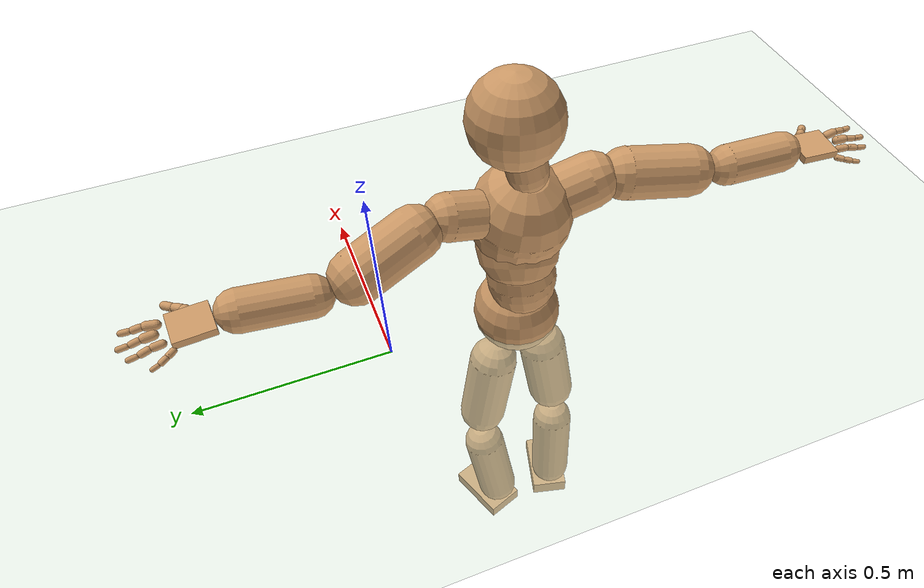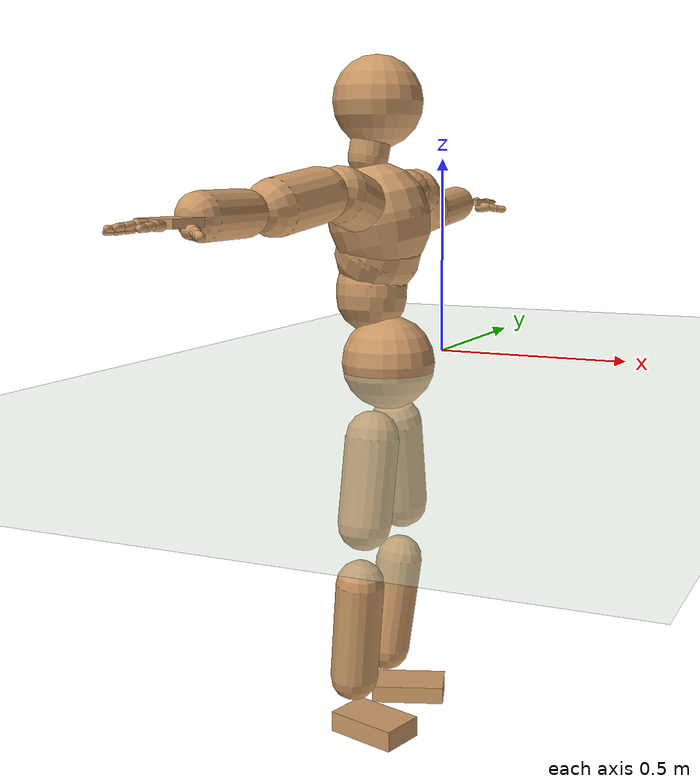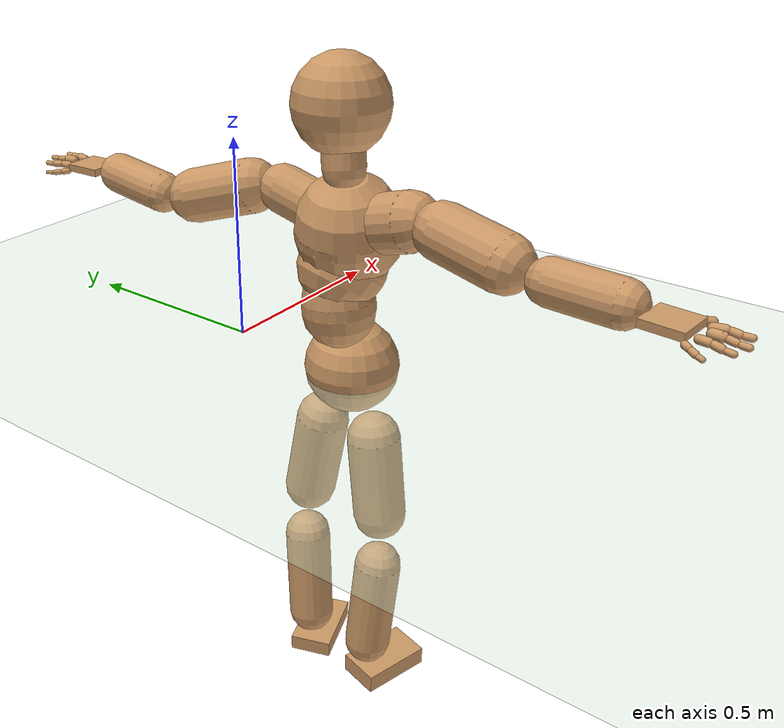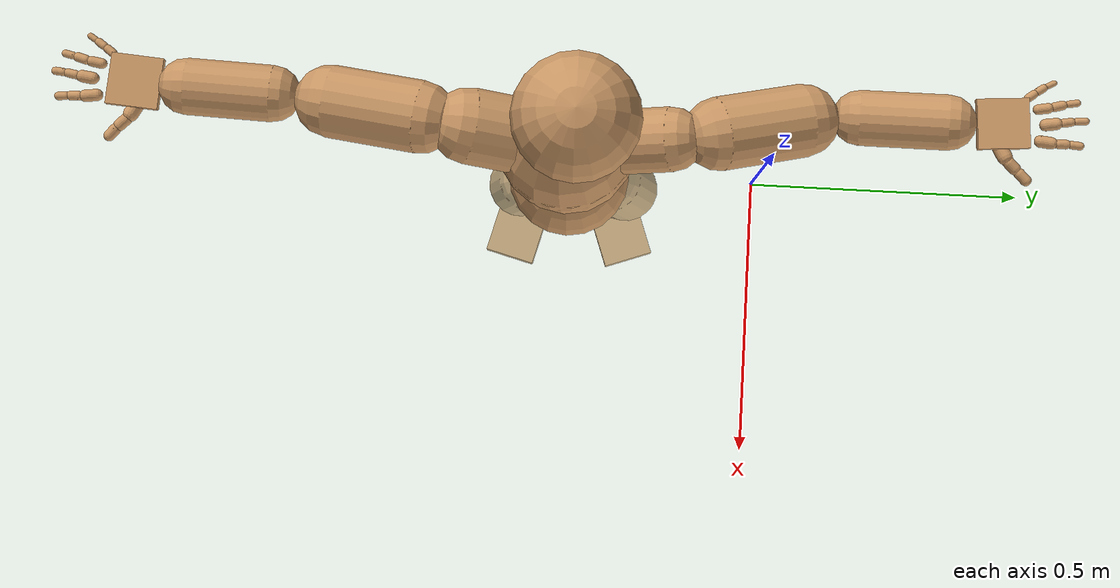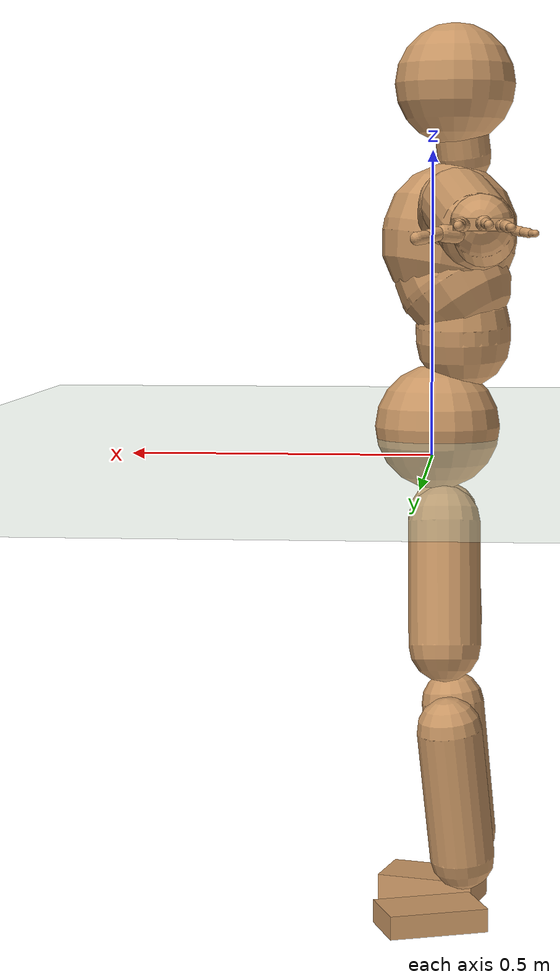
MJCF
<mujoco model="humanoid">
  <compiler coordinate="local" angle="radian"/>
  <default>
    <joint damping="0.0" armature="0.01" stiffness="0.0" limited="true"/>
    <geom conaffinity="1" condim="3" contype="7" margin="0.001" rgba="0.8 0.6 .4 1"/>
  </default>
  <asset>
    <texture type="skybox" builtin="gradient" rgb1=".4 .5 .6" rgb2="0 0 0" width="100" height="100"/>
    <texture builtin="flat" height="1278" mark="cross" markrgb="1 1 1" name="texgeom" random="0.01" rgb1="0.8 0.6 0.4" rgb2="0.8 0.6 0.4" type="cube" width="127"/>
    <texture builtin="checker" height="100" name="texplane" rgb1="0 0 0" rgb2="0.8 0.8 0.8" type="2d" width="100"/>
    <material name="MatPlane" reflectance="0.5" shininess="1" specular="1" texrepeat="60 60" texture="texplane"/>
    <material name="geom" texture="texgeom" texuniform="true"/>
  </asset>
  <worldbody>
    <light cutoff="100" diffuse="1 1 1" dir="-0 0 -1.3" directional="true" exponent="1" pos="0 0 1.3" specular=".1 .1 .1"/>
    <geom conaffinity="1" condim="3" name="floor" pos="0 0 0" rgba="0.8 0.9 0.8 1" size="100 100 .2" type="plane" material="MatPlane"/>
    <body name="Pelvis" pos="0.0018 -0.3444 0.0189">
      <freejoint name="Pelvis"/>
      <geom type="sphere" contype="1" conaffinity="1" density="500" size="0.1129" pos="0.0000 0.0000 0.0000" name="Pelvis"/>
      <body name="L_Hip" pos="-0.0149 0.0616 -0.0914">
        <joint name="L_Hip_x" type="hinge" pos="0 0 0" axis="1 0 0" stiffness="800" damping="80" armature="0.02" range="-180.0000 180.0000"/>
        <joint name="L_Hip_y" type="hinge" pos="0 0 0" axis="0 1 0" stiffness="800" damping="80" armature="0.02" range="-180.0000 180.0000"/>
        <joint name="L_Hip_z" type="hinge" pos="0 0 0" axis="0 0 1" stiffness="800" damping="80" armature="0.02" range="-180.0000 180.0000"/>
        <geom type="capsule" contype="1" conaffinity="1" density="500" fromto="-0.0010 0.0133 -0.0723 -0.0040 0.0530 -0.2892" size="0.0647" name="L_Hip"/>
        <body name="L_Knee" pos="-0.005 0.0663 -0.3615">
          <joint name="L_Knee_x" type="hinge" pos="0 0 0" axis="1 0 0" stiffness="800" damping="80" armature="0.02" range="-180.0000 180.0000"/>
          <joint name="L_Knee_y" type="hinge" pos="0 0 0" axis="0 1 0" stiffness="800" damping="80" armature="0.02" range="-180.0000 180.0000"/>
          <joint name="L_Knee_z" type="hinge" pos="0 0 0" axis="0 0 1" stiffness="800" damping="80" armature="0.02" range="-180.0000 180.0000"/>
          <geom type="capsule" contype="1" conaffinity="1" density="500" fromto="-0.0081 -0.0095 -0.0795 -0.0322 -0.0381 -0.3182" size="0.0586" name="L_Knee"/>
          <body name="L_Ankle" pos="-0.0403 -0.0477 -0.3977">
            <joint name="L_Ankle_x" type="hinge" pos="0 0 0" axis="1 0 0" stiffness="800" damping="80" armature="0.02" range="-180.0000 180.0000"/>
            <joint name="L_Ankle_y" type="hinge" pos="0 0 0" axis="0 1 0" stiffness="800" damping="80" armature="0.02" range="-180.0000 180.0000"/>
            <joint name="L_Ankle_z" type="hinge" pos="0 0 0" axis="0 0 1" stiffness="800" damping="80" armature="0.02" range="-180.0000 180.0000"/>
            <geom type="box" contype="1" conaffinity="1" density="500" pos="0.0651 0.0231 -0.0281" size="0.0915 0.0543 0.0213" quat="0.9855 0.0000 0.0000 0.1696" name="L_Ankle"/>
            <body name="L_Toe" pos="0.1302 0.0462 -0.0563">
              <joint name="L_Toe_x" type="hinge" pos="0 0 0" axis="1 0 0" stiffness="500" damping="50" armature="0.02" range="-180.0000 180.0000"/>
              <joint name="L_Toe_y" type="hinge" pos="0 0 0" axis="0 1 0" stiffness="500" damping="50" armature="0.02" range="-180.0000 180.0000"/>
              <joint name="L_Toe_z" type="hinge" pos="0 0 0" axis="0 0 1" stiffness="500" damping="50" armature="0.02" range="-180.0000 180.0000"/>
              <geom type="box" contype="1" conaffinity="1" density="500" pos="0.0000 0.0000 0.0294" size="0.0011 0.0026 0.0011" quat="0.9848 0.0000 0.0000 0.1738" name="L_Toe"/>
            </body>
          </body>
        </body>
      </body>
      <body name="R_Hip" pos="-0.0065 -0.0639 -0.1026">
        <joint name="R_Hip_x" type="hinge" pos="0 0 0" axis="1 0 0" stiffness="800" damping="80" armature="0.02" range="-180.0000 180.0000"/>
        <joint name="R_Hip_y" type="hinge" pos="0 0 0" axis="0 1 0" stiffness="800" damping="80" armature="0.02" range="-180.0000 180.0000"/>
        <joint name="R_Hip_z" type="hinge" pos="0 0 0" axis="0 0 1" stiffness="800" damping="80" armature="0.02" range="-180.0000 180.0000"/>
        <geom type="capsule" contype="1" conaffinity="1" density="500" fromto="-0.0028 -0.0098 -0.0690 -0.0112 -0.0392 -0.2762" size="0.0647" name="R_Hip"/>
        <body name="R_Knee" pos="-0.014 -0.049 -0.3452">
          <joint name="R_Knee_x" type="hinge" pos="0 0 0" axis="1 0 0" stiffness="800" damping="80" armature="0.02" range="-180.0000 180.0000"/>
          <joint name="R_Knee_y" type="hinge" pos="0 0 0" axis="0 1 0" stiffness="800" damping="80" armature="0.02" range="-180.0000 180.0000"/>
          <joint name="R_Knee_z" type="hinge" pos="0 0 0" axis="0 0 1" stiffness="800" damping="80" armature="0.02" range="-180.0000 180.0000"/>
          <geom type="capsule" contype="1" conaffinity="1" density="500" fromto="-0.0080 0.0034 -0.0820 -0.0319 0.0135 -0.3278" size="0.0587" name="R_Knee"/>
          <body name="R_Ankle" pos="-0.0398 0.0169 -0.4098">
            <joint name="R_Ankle_x" type="hinge" pos="0 0 0" axis="1 0 0" stiffness="800" damping="80" armature="0.02" range="-180.0000 180.0000"/>
            <joint name="R_Ankle_y" type="hinge" pos="0 0 0" axis="0 1 0" stiffness="800" damping="80" armature="0.02" range="-180.0000 180.0000"/>
            <joint name="R_Ankle_z" type="hinge" pos="0 0 0" axis="0 0 1" stiffness="800" damping="80" armature="0.02" range="-180.0000 180.0000"/>
            <geom type="box" contype="1" conaffinity="1" density="500" pos="0.0686 -0.0183 -0.0275" size="0.0915 0.0543 0.0252" quat="0.9915 0.0000 0.0000 -0.1302" name="R_Ankle"/>
            <body name="R_Toe" pos="0.1373 -0.0367 -0.055">
              <joint name="R_Toe_x" type="hinge" pos="0 0 0" axis="1 0 0" stiffness="500" damping="50" armature="0.02" range="-180.0000 180.0000"/>
              <joint name="R_Toe_y" type="hinge" pos="0 0 0" axis="0 1 0" stiffness="500" damping="50" armature="0.02" range="-180.0000 180.0000"/>
              <joint name="R_Toe_z" type="hinge" pos="0 0 0" axis="0 0 1" stiffness="500" damping="50" armature="0.02" range="-180.0000 180.0000"/>
              <geom type="box" contype="1" conaffinity="1" density="500" pos="0.0000 0.0000 0.0248" size="0.001 0.0026 0.0011" quat="0.9926 0.0000 0.0000 -0.1217" name="R_Toe"/>
            </body>
          </body>
        </body>
      </body>
      <body name="Torso" pos="-0.0471 -0.0007 0.1019">
        <joint name="Torso_x" type="hinge" pos="0 0 0" axis="1 0 0" stiffness="1000" damping="100" armature="0.02" range="-180.0000 180.0000"/>
        <joint name="Torso_y" type="hinge" pos="0 0 0" axis="0 1 0" stiffness="1000" damping="100" armature="0.02" range="-180.0000 180.0000"/>
        <joint name="Torso_z" type="hinge" pos="0 0 0" axis="0 0 1" stiffness="1000" damping="100" armature="0.02" range="-180.0000 180.0000"/>
        <geom type="capsule" contype="1" conaffinity="1" density="500" fromto="0.0016 0.0081 0.0805 0.0011 0.0054 0.0537" size="0.0853" name="Torso"/>
        <body name="Spine" pos="0.0027 0.0135 0.1342">
          <joint name="Spine_x" type="hinge" pos="0 0 0" axis="1 0 0" stiffness="1000" damping="100" armature="0.02" range="-180.0000 180.0000"/>
          <joint name="Spine_y" type="hinge" pos="0 0 0" axis="0 1 0" stiffness="1000" damping="100" armature="0.02" range="-180.0000 180.0000"/>
          <joint name="Spine_z" type="hinge" pos="0 0 0" axis="0 0 1" stiffness="1000" damping="100" armature="0.02" range="-180.0000 180.0000"/>
          <geom type="capsule" contype="1" conaffinity="1" density="500" fromto="0.0205 -0.0066 0.0324 0.0137 -0.0044 0.0216" size="0.102" name="Spine"/>
          <body name="Chest" pos="0.0341 -0.0109 0.054">
            <joint name="Chest_x" type="hinge" pos="0 0 0" axis="1 0 0" stiffness="1000" damping="100" armature="0.02" range="-180.0000 180.0000"/>
            <joint name="Chest_y" type="hinge" pos="0 0 0" axis="0 1 0" stiffness="1000" damping="100" armature="0.02" range="-180.0000 180.0000"/>
            <joint name="Chest_z" type="hinge" pos="0 0 0" axis="0 0 1" stiffness="1000" damping="100" armature="0.02" range="-180.0000 180.0000"/>
            <geom type="capsule" contype="1" conaffinity="1" density="500" fromto="-0.0116 -0.0046 0.0620 -0.0078 -0.0031 0.0413" size="0.121" name="Chest"/>
            <body name="Neck" pos="-0.0395 -0.0137 0.1617">
              <joint name="Neck_x" type="hinge" pos="0 0 0" axis="1 0 0" stiffness="500" damping="50" armature="0.02" range="-180.0000 180.0000"/>
              <joint name="Neck_y" type="hinge" pos="0 0 0" axis="0 1 0" stiffness="500" damping="50" armature="0.02" range="-180.0000 180.0000"/>
              <joint name="Neck_z" type="hinge" pos="0 0 0" axis="0 0 1" stiffness="500" damping="50" armature="0.02" range="-180.0000 180.0000"/>
              <geom type="capsule" contype="1" conaffinity="1" density="500" fromto="0.0041 0.0052 0.0319 0.0165 0.0210 0.1275" size="0.0479" name="Neck"/>
              <body name="Head" pos="0.0207 0.0262 0.1594">
                <joint name="Head_x" type="hinge" pos="0 0 0" axis="1 0 0" stiffness="500" damping="50" armature="0.02" range="-180.0000 180.0000"/>
                <joint name="Head_y" type="hinge" pos="0 0 0" axis="0 1 0" stiffness="500" damping="50" armature="0.02" range="-180.0000 180.0000"/>
                <joint name="Head_z" type="hinge" pos="0 0 0" axis="0 0 1" stiffness="500" damping="50" armature="0.02" range="-180.0000 180.0000"/>
                <geom type="sphere" contype="1" conaffinity="1" density="500" size="0.1073" pos="0.0000 0.0000 0.0000" name="Head"/>
              </body>
            </body>
            <body name="L_Thorax" pos="-0.0085 0.0468 0.0737">
              <joint name="L_Thorax_x" type="hinge" pos="0 0 0" axis="1 0 0" stiffness="500" damping="50" armature="0.02" range="-180.0000 180.0000"/>
              <joint name="L_Thorax_y" type="hinge" pos="0 0 0" axis="0 1 0" stiffness="500" damping="50" armature="0.02" range="-180.0000 180.0000"/>
              <joint name="L_Thorax_z" type="hinge" pos="0 0 0" axis="0 0 1" stiffness="500" damping="50" armature="0.02" range="-180.0000 180.0000"/>
              <geom type="capsule" contype="1" conaffinity="1" density="500" fromto="-0.0021 0.0317 0.0090 -0.0084 0.1269 0.0362" size="0.056" name="L_Thorax"/>
              <body name="L_Shoulder" pos="-0.0106 0.1586 0.0452">
                <joint name="L_Shoulder_x" type="hinge" pos="0 0 0" axis="1 0 0" stiffness="500" damping="50" armature="0.02" range="-180.0000 180.0000"/>
                <joint name="L_Shoulder_y" type="hinge" pos="0 0 0" axis="0 1 0" stiffness="500" damping="50" armature="0.02" range="-180.0000 180.0000"/>
                <joint name="L_Shoulder_z" type="hinge" pos="0 0 0" axis="0 0 1" stiffness="500" damping="50" armature="0.02" range="-180.0000 180.0000"/>
                <geom type="capsule" contype="1" conaffinity="1" density="500" fromto="-0.0119 0.0485 -0.0145 -0.0476 0.1941 -0.0580" size="0.0633" name="L_Shoulder"/>
                <body name="L_Elbow" pos="-0.0595 0.2426 -0.0725">
                  <joint name="L_Elbow_x" type="hinge" pos="0 0 0" axis="1 0 0" stiffness="500" damping="50" armature="0.02" range="-720.0000 720.0000"/>
                  <joint name="L_Elbow_y" type="hinge" pos="0 0 0" axis="0 1 0" stiffness="500" damping="50" armature="0.02" range="-720.0000 720.0000"/>
                  <joint name="L_Elbow_z" type="hinge" pos="0 0 0" axis="0 0 1" stiffness="500" damping="50" armature="0.02" range="-720.0000 720.0000"/>
                  <geom type="capsule" contype="1" conaffinity="1" density="500" fromto="0.0010 0.0503 0.0056 0.0040 0.2011 0.0224" size="0.0482" name="L_Elbow"/>
                  <body name="L_Wrist" pos="0.0049 0.2513 0.028">
                    <joint name="L_Wrist_x" type="hinge" pos="0 0 0" axis="1 0 0" stiffness="300" damping="30" armature="0.02" range="-180.0000 180.0000"/>
                    <joint name="L_Wrist_y" type="hinge" pos="0 0 0" axis="0 1 0" stiffness="300" damping="30" armature="0.02" range="-180.0000 180.0000"/>
                    <joint name="L_Wrist_z" type="hinge" pos="0 0 0" axis="0 0 1" stiffness="300" damping="30" armature="0.02" range="-180.0000 180.0000"/>
                    <geom type="box" contype="1" conaffinity="1" density="500" pos="-0.0029 0.0428 -0.0050" size="0.045 0.0432 0.0088" quat="0.7307 0.0000 0.0000 -0.6827" name="L_Wrist"/>
                    <body name="L_Index1" pos="0.0231 0.1013 -0.0063">
                      <joint name="L_Index1_x" type="hinge" pos="0 0 0" axis="1 0 0" stiffness="100" damping="10" armature="0.02" range="-180.0000 180.0000"/>
                      <joint name="L_Index1_y" type="hinge" pos="0 0 0" axis="0 1 0" stiffness="100" damping="10" armature="0.02" range="-180.0000 180.0000"/>
                      <joint name="L_Index1_z" type="hinge" pos="0 0 0" axis="0 0 1" stiffness="100" damping="10" armature="0.02" range="-180.0000 180.0000"/>
                      <geom type="capsule" contype="1" conaffinity="1" density="500" fromto="0.0008 0.0065 0.0004 0.0032 0.0261 0.0017" size="0.0104" name="L_Index1"/>
                      <body name="L_Index2" pos="0.004 0.0327 0.0021">
                        <joint name="L_Index2_x" type="hinge" pos="0 0 0" axis="1 0 0" stiffness="100" damping="10" armature="0.02" range="-180.0000 180.0000"/>
                        <joint name="L_Index2_y" type="hinge" pos="0 0 0" axis="0 1 0" stiffness="100" damping="10" armature="0.02" range="-180.0000 180.0000"/>
                        <joint name="L_Index2_z" type="hinge" pos="0 0 0" axis="0 0 1" stiffness="100" damping="10" armature="0.02" range="-180.0000 180.0000"/>
                        <geom type="capsule" contype="1" conaffinity="1" density="500" fromto="-0.0000 0.0046 -0.0005 -0.0001 0.0184 -0.0021" size="0.0083" name="L_Index2"/>
                        <body name="L_Index3" pos="-0.0001 0.023 -0.0026">
                          <joint name="L_Index3_x" type="hinge" pos="0 0 0" axis="1 0 0" stiffness="100" damping="10" armature="0.02" range="-180.0000 180.0000"/>
                          <joint name="L_Index3_y" type="hinge" pos="0 0 0" axis="0 1 0" stiffness="100" damping="10" armature="0.02" range="-180.0000 180.0000"/>
                          <joint name="L_Index3_z" type="hinge" pos="0 0 0" axis="0 0 1" stiffness="100" damping="10" armature="0.02" range="-180.0000 180.0000"/>
                          <geom type="capsule" contype="1" conaffinity="1" density="500" fromto="0.0004 0.0050 -0.0001 0.0015 0.0200 -0.0005" size="0.007" name="L_Index3"/>
                        </body>
                      </body>
                    </body>
                    <body name="L_Middle1" pos="-0.0035 0.1092 -0.0033">
                      <joint name="L_Middle1_x" type="hinge" pos="0 0 0" axis="1 0 0" stiffness="100" damping="10" armature="0.02" range="-180.0000 180.0000"/>
                      <joint name="L_Middle1_y" type="hinge" pos="0 0 0" axis="0 1 0" stiffness="100" damping="10" armature="0.02" range="-180.0000 180.0000"/>
                      <joint name="L_Middle1_z" type="hinge" pos="0 0 0" axis="0 0 1" stiffness="100" damping="10" armature="0.02" range="-180.0000 180.0000"/>
                      <geom type="capsule" contype="1" conaffinity="1" density="500" fromto="-0.0009 0.0063 0.0001 -0.0036 0.0250 0.0006" size="0.0105" name="L_Middle1"/>
                      <body name="L_Middle2" pos="-0.0046 0.0313 0.0007">
                        <joint name="L_Middle2_x" type="hinge" pos="0 0 0" axis="1 0 0" stiffness="100" damping="10" armature="0.02" range="-180.0000 180.0000"/>
                        <joint name="L_Middle2_y" type="hinge" pos="0 0 0" axis="0 1 0" stiffness="100" damping="10" armature="0.02" range="-180.0000 180.0000"/>
                        <joint name="L_Middle2_z" type="hinge" pos="0 0 0" axis="0 0 1" stiffness="100" damping="10" armature="0.02" range="-180.0000 180.0000"/>
                        <geom type="capsule" contype="1" conaffinity="1" density="500" fromto="-0.0009 0.0047 -0.0005 -0.0035 0.0190 -0.0021" size="0.0076" name="L_Middle2"/>
                        <body name="L_Middle3" pos="-0.0044 0.0237 -0.0026">
                          <joint name="L_Middle3_x" type="hinge" pos="0 0 0" axis="1 0 0" stiffness="100" damping="10" armature="0.02" range="-180.0000 180.0000"/>
                          <joint name="L_Middle3_y" type="hinge" pos="0 0 0" axis="0 1 0" stiffness="100" damping="10" armature="0.02" range="-180.0000 180.0000"/>
                          <joint name="L_Middle3_z" type="hinge" pos="0 0 0" axis="0 0 1" stiffness="100" damping="10" armature="0.02" range="-180.0000 180.0000"/>
                          <geom type="capsule" contype="1" conaffinity="1" density="500" fromto="-0.0005 0.0051 -0.0001 -0.0019 0.0206 -0.0005" size="0.0066" name="L_Middle3"/>
                        </body>
                      </body>
                    </body>
                    <body name="L_Pinky1" pos="-0.0485 0.083 -0.0134">
                      <joint name="L_Pinky1_x" type="hinge" pos="0 0 0" axis="1 0 0" stiffness="100" damping="10" armature="0.02" range="-180.0000 180.0000"/>
                      <joint name="L_Pinky1_y" type="hinge" pos="0 0 0" axis="0 1 0" stiffness="100" damping="10" armature="0.02" range="-180.0000 180.0000"/>
                      <joint name="L_Pinky1_z" type="hinge" pos="0 0 0" axis="0 0 1" stiffness="100" damping="10" armature="0.02" range="-180.0000 180.0000"/>
                      <geom type="capsule" contype="1" conaffinity="1" density="500" fromto="-0.0025 0.0034 -0.0004 -0.0100 0.0135 -0.0015" size="0.0074" name="L_Pinky1"/>
                      <body name="L_Pinky2" pos="-0.0125 0.0168 -0.0019">
                        <joint name="L_Pinky2_x" type="hinge" pos="0 0 0" axis="1 0 0" stiffness="100" damping="10" armature="0.02" range="-180.0000 180.0000"/>
                        <joint name="L_Pinky2_y" type="hinge" pos="0 0 0" axis="0 1 0" stiffness="100" damping="10" armature="0.02" range="-180.0000 180.0000"/>
                        <joint name="L_Pinky2_z" type="hinge" pos="0 0 0" axis="0 0 1" stiffness="100" damping="10" armature="0.02" range="-180.0000 180.0000"/>
                        <geom type="capsule" contype="1" conaffinity="1" density="500" fromto="-0.0022 0.0033 -0.0005 -0.0090 0.0132 -0.0018" size="0.007" name="L_Pinky2"/>
                        <body name="L_Pinky3" pos="-0.0112 0.0165 -0.0023">
                          <joint name="L_Pinky3_x" type="hinge" pos="0 0 0" axis="1 0 0" stiffness="100" damping="10" armature="0.02" range="-180.0000 180.0000"/>
                          <joint name="L_Pinky3_y" type="hinge" pos="0 0 0" axis="0 1 0" stiffness="100" damping="10" armature="0.02" range="-180.0000 180.0000"/>
                          <joint name="L_Pinky3_z" type="hinge" pos="0 0 0" axis="0 0 1" stiffness="100" damping="10" armature="0.02" range="-180.0000 180.0000"/>
                          <geom type="capsule" contype="1" conaffinity="1" density="500" fromto="-0.0018 0.0037 -0.0001 -0.0074 0.0148 -0.0002" size="0.0052" name="L_Pinky3"/>
                        </body>
                      </body>
                    </body>
                    <body name="L_Ring1" pos="-0.0301 0.0969 -0.007">
                      <joint name="L_Ring1_x" type="hinge" pos="0 0 0" axis="1 0 0" stiffness="100" damping="10" armature="0.02" range="-180.0000 180.0000"/>
                      <joint name="L_Ring1_y" type="hinge" pos="0 0 0" axis="0 1 0" stiffness="100" damping="10" armature="0.02" range="-180.0000 180.0000"/>
                      <joint name="L_Ring1_z" type="hinge" pos="0 0 0" axis="0 0 1" stiffness="100" damping="10" armature="0.02" range="-180.0000 180.0000"/>
                      <geom type="capsule" contype="1" conaffinity="1" density="500" fromto="-0.0010 0.0058 0.0001 -0.0040 0.0234 0.0005" size="0.0089" name="L_Ring1"/>
                      <body name="L_Ring2" pos="-0.0051 0.0292 0.0006">
                        <joint name="L_Ring2_x" type="hinge" pos="0 0 0" axis="1 0 0" stiffness="100" damping="10" armature="0.02" range="-180.0000 180.0000"/>
                        <joint name="L_Ring2_y" type="hinge" pos="0 0 0" axis="0 1 0" stiffness="100" damping="10" armature="0.02" range="-180.0000 180.0000"/>
                        <joint name="L_Ring2_z" type="hinge" pos="0 0 0" axis="0 0 1" stiffness="100" damping="10" armature="0.02" range="-180.0000 180.0000"/>
                        <geom type="capsule" contype="1" conaffinity="1" density="500" fromto="-0.0014 0.0047 -0.0005 -0.0054 0.0189 -0.0021" size="0.0081" name="L_Ring2"/>
                        <body name="L_Ring3" pos="-0.0068 0.0236 -0.0026">
                          <joint name="L_Ring3_x" type="hinge" pos="0 0 0" axis="1 0 0" stiffness="100" damping="10" armature="0.02" range="-180.0000 180.0000"/>
                          <joint name="L_Ring3_y" type="hinge" pos="0 0 0" axis="0 1 0" stiffness="100" damping="10" armature="0.02" range="-180.0000 180.0000"/>
                          <joint name="L_Ring3_z" type="hinge" pos="0 0 0" axis="0 0 1" stiffness="100" damping="10" armature="0.02" range="-180.0000 180.0000"/>
                          <geom type="capsule" contype="1" conaffinity="1" density="500" fromto="-0.0010 0.0051 -0.0001 -0.0038 0.0205 -0.0005" size="0.0062" name="L_Ring3"/>
                        </body>
                      </body>
                    </body>
                    <body name="L_Thumb1" pos="0.0298 0.0379 -0.0197">
                      <joint name="L_Thumb1_x" type="hinge" pos="0 0 0" axis="1 0 0" stiffness="100" damping="10" armature="0.02" range="-180.0000 180.0000"/>
                      <joint name="L_Thumb1_y" type="hinge" pos="0 0 0" axis="0 1 0" stiffness="100" damping="10" armature="0.02" range="-180.0000 180.0000"/>
                      <joint name="L_Thumb1_z" type="hinge" pos="0 0 0" axis="0 0 1" stiffness="100" damping="10" armature="0.02" range="-180.0000 180.0000"/>
                      <geom type="capsule" contype="1" conaffinity="1" density="500" fromto="0.0056 0.0031 0.0005 0.0224 0.0126 0.0021" size="0.0134" name="L_Thumb1"/>
                      <body name="L_Thumb2" pos="0.028 0.0157 0.0026">
                        <joint name="L_Thumb2_x" type="hinge" pos="0 0 0" axis="1 0 0" stiffness="100" damping="10" armature="0.02" range="-180.0000 180.0000"/>
                        <joint name="L_Thumb2_y" type="hinge" pos="0 0 0" axis="0 1 0" stiffness="100" damping="10" armature="0.02" range="-180.0000 180.0000"/>
                        <joint name="L_Thumb2_z" type="hinge" pos="0 0 0" axis="0 0 1" stiffness="100" damping="10" armature="0.02" range="-180.0000 180.0000"/>
                        <geom type="capsule" contype="1" conaffinity="1" density="500" fromto="0.0034 0.0038 -0.0010 0.0138 0.0154 -0.0042" size="0.0106" name="L_Thumb2"/>
                        <body name="L_Thumb3" pos="0.0172 0.0192 -0.0052">
                          <joint name="L_Thumb3_x" type="hinge" pos="0 0 0" axis="1 0 0" stiffness="100" damping="10" armature="0.02" range="-180.0000 180.0000"/>
                          <joint name="L_Thumb3_y" type="hinge" pos="0 0 0" axis="0 1 0" stiffness="100" damping="10" armature="0.02" range="-180.0000 180.0000"/>
                          <joint name="L_Thumb3_z" type="hinge" pos="0 0 0" axis="0 0 1" stiffness="100" damping="10" armature="0.02" range="-180.0000 180.0000"/>
                          <geom type="capsule" contype="1" conaffinity="1" density="500" fromto="0.0038 0.0042 -0.0006 0.0154 0.0170 -0.0026" size="0.0097" name="L_Thumb3"/>
                        </body>
                      </body>
                    </body>
                  </body>
                </body>
              </body>
            </body>
            <body name="R_Thorax" pos="-0.0102 -0.0561 0.0746">
              <joint name="R_Thorax_x" type="hinge" pos="0 0 0" axis="1 0 0" stiffness="500" damping="50" armature="0.02" range="-180.0000 180.0000"/>
              <joint name="R_Thorax_y" type="hinge" pos="0 0 0" axis="0 1 0" stiffness="500" damping="50" armature="0.02" range="-180.0000 180.0000"/>
              <joint name="R_Thorax_z" type="hinge" pos="0 0 0" axis="0 0 1" stiffness="500" damping="50" armature="0.02" range="-180.0000 180.0000"/>
              <geom type="capsule" contype="1" conaffinity="1" density="500" fromto="-0.0032 -0.0289 0.0089 -0.0128 -0.1158 0.0356" size="0.0657" name="R_Thorax"/>
              <body name="R_Shoulder" pos="-0.016 -0.1447 0.0445">
                <joint name="R_Shoulder_x" type="hinge" pos="0 0 0" axis="1 0 0" stiffness="500" damping="50" armature="0.02" range="-180.0000 180.0000"/>
                <joint name="R_Shoulder_y" type="hinge" pos="0 0 0" axis="0 1 0" stiffness="500" damping="50" armature="0.02" range="-180.0000 180.0000"/>
                <joint name="R_Shoulder_z" type="hinge" pos="0 0 0" axis="0 0 1" stiffness="500" damping="50" armature="0.02" range="-180.0000 180.0000"/>
                <geom type="capsule" contype="1" conaffinity="1" density="500" fromto="-0.0075 -0.0523 -0.0077 -0.0299 -0.2092 -0.0307" size="0.0625" name="R_Shoulder"/>
                <body name="R_Elbow" pos="-0.0374 -0.2615 -0.0383">
                  <joint name="R_Elbow_x" type="hinge" pos="0 0 0" axis="1 0 0" stiffness="500" damping="50" armature="0.02" range="-720.0000 720.0000"/>
                  <joint name="R_Elbow_y" type="hinge" pos="0 0 0" axis="0 1 0" stiffness="500" damping="50" armature="0.02" range="-720.0000 720.0000"/>
                  <joint name="R_Elbow_z" type="hinge" pos="0 0 0" axis="0 0 1" stiffness="500" damping="50" armature="0.02" range="-720.0000 720.0000"/>
                  <geom type="capsule" contype="1" conaffinity="1" density="500" fromto="-0.0018 -0.0490 -0.0005 -0.0073 -0.1960 -0.0018" size="0.0492" name="R_Elbow"/>
                  <body name="R_Wrist" pos="-0.0091 -0.245 -0.0023">
                    <joint name="R_Wrist_x" type="hinge" pos="0 0 0" axis="1 0 0" stiffness="300" damping="30" armature="0.02" range="-180.0000 180.0000"/>
                    <joint name="R_Wrist_y" type="hinge" pos="0 0 0" axis="0 1 0" stiffness="300" damping="30" armature="0.02" range="-180.0000 180.0000"/>
                    <joint name="R_Wrist_z" type="hinge" pos="0 0 0" axis="0 0 1" stiffness="300" damping="30" armature="0.02" range="-180.0000 180.0000"/>
                    <geom type="box" contype="1" conaffinity="1" density="500" pos="-0.0034 -0.0425 -0.0070" size="0.045 0.0442 0.009" quat="0.7347 0.0000 0.0000 0.6784" name="R_Wrist"/>
                    <body name="R_Index1" pos="0.0221 -0.1007 -0.0103">
                      <joint name="R_Index1_x" type="hinge" pos="0 0 0" axis="1 0 0" stiffness="100" damping="10" armature="0.02" range="-180.0000 180.0000"/>
                      <joint name="R_Index1_y" type="hinge" pos="0 0 0" axis="0 1 0" stiffness="100" damping="10" armature="0.02" range="-180.0000 180.0000"/>
                      <joint name="R_Index1_z" type="hinge" pos="0 0 0" axis="0 0 1" stiffness="100" damping="10" armature="0.02" range="-180.0000 180.0000"/>
                      <geom type="capsule" contype="1" conaffinity="1" density="500" fromto="0.0008 -0.0065 0.0004 0.0032 -0.0261 0.0017" size="0.0104" name="R_Index1"/>
                      <body name="R_Index2" pos="0.004 -0.0327 0.0021">
                        <joint name="R_Index2_x" type="hinge" pos="0 0 0" axis="1 0 0" stiffness="100" damping="10" armature="0.02" range="-180.0000 180.0000"/>
                        <joint name="R_Index2_y" type="hinge" pos="0 0 0" axis="0 1 0" stiffness="100" damping="10" armature="0.02" range="-180.0000 180.0000"/>
                        <joint name="R_Index2_z" type="hinge" pos="0 0 0" axis="0 0 1" stiffness="100" damping="10" armature="0.02" range="-180.0000 180.0000"/>
                        <geom type="capsule" contype="1" conaffinity="1" density="500" fromto="-0.0000 -0.0046 -0.0005 -0.0001 -0.0184 -0.0021" size="0.0083" name="R_Index2"/>
                        <body name="R_Index3" pos="-0.0001 -0.023 -0.0026">
                          <joint name="R_Index3_x" type="hinge" pos="0 0 0" axis="1 0 0" stiffness="100" damping="10" armature="0.02" range="-180.0000 180.0000"/>
                          <joint name="R_Index3_y" type="hinge" pos="0 0 0" axis="0 1 0" stiffness="100" damping="10" armature="0.02" range="-180.0000 180.0000"/>
                          <joint name="R_Index3_z" type="hinge" pos="0 0 0" axis="0 0 1" stiffness="100" damping="10" armature="0.02" range="-180.0000 180.0000"/>
                          <geom type="capsule" contype="1" conaffinity="1" density="500" fromto="0.0004 -0.0042 -0.0001 0.0015 -0.0168 -0.0005" size="0.0073" name="R_Index3"/>
                        </body>
                      </body>
                    </body>
                    <body name="R_Middle1" pos="-0.0045 -0.1086 -0.0074">
                      <joint name="R_Middle1_x" type="hinge" pos="0 0 0" axis="1 0 0" stiffness="100" damping="10" armature="0.02" range="-180.0000 180.0000"/>
                      <joint name="R_Middle1_y" type="hinge" pos="0 0 0" axis="0 1 0" stiffness="100" damping="10" armature="0.02" range="-180.0000 180.0000"/>
                      <joint name="R_Middle1_z" type="hinge" pos="0 0 0" axis="0 0 1" stiffness="100" damping="10" armature="0.02" range="-180.0000 180.0000"/>
                      <geom type="capsule" contype="1" conaffinity="1" density="500" fromto="-0.0009 -0.0063 0.0001 -0.0036 -0.0250 0.0006" size="0.0105" name="R_Middle1"/>
                      <body name="R_Middle2" pos="-0.0046 -0.0313 0.0007">
                        <joint name="R_Middle2_x" type="hinge" pos="0 0 0" axis="1 0 0" stiffness="100" damping="10" armature="0.02" range="-180.0000 180.0000"/>
                        <joint name="R_Middle2_y" type="hinge" pos="0 0 0" axis="0 1 0" stiffness="100" damping="10" armature="0.02" range="-180.0000 180.0000"/>
                        <joint name="R_Middle2_z" type="hinge" pos="0 0 0" axis="0 0 1" stiffness="100" damping="10" armature="0.02" range="-180.0000 180.0000"/>
                        <geom type="capsule" contype="1" conaffinity="1" density="500" fromto="-0.0009 -0.0047 -0.0005 -0.0035 -0.0190 -0.0021" size="0.0076" name="R_Middle2"/>
                        <body name="R_Middle3" pos="-0.0044 -0.0237 -0.0026">
                          <joint name="R_Middle3_x" type="hinge" pos="0 0 0" axis="1 0 0" stiffness="100" damping="10" armature="0.02" range="-180.0000 180.0000"/>
                          <joint name="R_Middle3_y" type="hinge" pos="0 0 0" axis="0 1 0" stiffness="100" damping="10" armature="0.02" range="-180.0000 180.0000"/>
                          <joint name="R_Middle3_z" type="hinge" pos="0 0 0" axis="0 0 1" stiffness="100" damping="10" armature="0.02" range="-180.0000 180.0000"/>
                          <geom type="capsule" contype="1" conaffinity="1" density="500" fromto="-0.0005 -0.0043 -0.0001 -0.0019 -0.0174 -0.0005" size="0.0069" name="R_Middle3"/>
                        </body>
                      </body>
                    </body>
                    <body name="R_Pinky1" pos="-0.0495 -0.0824 -0.0175">
                      <joint name="R_Pinky1_x" type="hinge" pos="0 0 0" axis="1 0 0" stiffness="100" damping="10" armature="0.02" range="-180.0000 180.0000"/>
                      <joint name="R_Pinky1_y" type="hinge" pos="0 0 0" axis="0 1 0" stiffness="100" damping="10" armature="0.02" range="-180.0000 180.0000"/>
                      <joint name="R_Pinky1_z" type="hinge" pos="0 0 0" axis="0 0 1" stiffness="100" damping="10" armature="0.02" range="-180.0000 180.0000"/>
                      <geom type="capsule" contype="1" conaffinity="1" density="500" fromto="-0.0025 -0.0034 -0.0004 -0.0100 -0.0135 -0.0015" size="0.0074" name="R_Pinky1"/>
                      <body name="R_Pinky2" pos="-0.0124 -0.0168 -0.0019">
                        <joint name="R_Pinky2_x" type="hinge" pos="0 0 0" axis="1 0 0" stiffness="100" damping="10" armature="0.02" range="-180.0000 180.0000"/>
                        <joint name="R_Pinky2_y" type="hinge" pos="0 0 0" axis="0 1 0" stiffness="100" damping="10" armature="0.02" range="-180.0000 180.0000"/>
                        <joint name="R_Pinky2_z" type="hinge" pos="0 0 0" axis="0 0 1" stiffness="100" damping="10" armature="0.02" range="-180.0000 180.0000"/>
                        <geom type="capsule" contype="1" conaffinity="1" density="500" fromto="-0.0022 -0.0033 -0.0005 -0.0090 -0.0132 -0.0018" size="0.007" name="R_Pinky2"/>
                        <body name="R_Pinky3" pos="-0.0112 -0.0165 -0.0023">
                          <joint name="R_Pinky3_x" type="hinge" pos="0 0 0" axis="1 0 0" stiffness="100" damping="10" armature="0.02" range="-180.0000 180.0000"/>
                          <joint name="R_Pinky3_y" type="hinge" pos="0 0 0" axis="0 1 0" stiffness="100" damping="10" armature="0.02" range="-180.0000 180.0000"/>
                          <joint name="R_Pinky3_z" type="hinge" pos="0 0 0" axis="0 0 1" stiffness="100" damping="10" armature="0.02" range="-180.0000 180.0000"/>
                          <geom type="capsule" contype="1" conaffinity="1" density="500" fromto="-0.0018 -0.0029 -0.0001 -0.0074 -0.0116 -0.0002" size="0.0055" name="R_Pinky3"/>
                        </body>
                      </body>
                    </body>
                    <body name="R_Ring1" pos="-0.031 -0.0963 -0.011">
                      <joint name="R_Ring1_x" type="hinge" pos="0 0 0" axis="1 0 0" stiffness="100" damping="10" armature="0.02" range="-180.0000 180.0000"/>
                      <joint name="R_Ring1_y" type="hinge" pos="0 0 0" axis="0 1 0" stiffness="100" damping="10" armature="0.02" range="-180.0000 180.0000"/>
                      <joint name="R_Ring1_z" type="hinge" pos="0 0 0" axis="0 0 1" stiffness="100" damping="10" armature="0.02" range="-180.0000 180.0000"/>
                      <geom type="capsule" contype="1" conaffinity="1" density="500" fromto="-0.0010 -0.0058 0.0001 -0.0040 -0.0234 0.0005" size="0.0089" name="R_Ring1"/>
                      <body name="R_Ring2" pos="-0.0051 -0.0292 0.0006">
                        <joint name="R_Ring2_x" type="hinge" pos="0 0 0" axis="1 0 0" stiffness="100" damping="10" armature="0.02" range="-180.0000 180.0000"/>
                        <joint name="R_Ring2_y" type="hinge" pos="0 0 0" axis="0 1 0" stiffness="100" damping="10" armature="0.02" range="-180.0000 180.0000"/>
                        <joint name="R_Ring2_z" type="hinge" pos="0 0 0" axis="0 0 1" stiffness="100" damping="10" armature="0.02" range="-180.0000 180.0000"/>
                        <geom type="capsule" contype="1" conaffinity="1" density="500" fromto="-0.0014 -0.0047 -0.0005 -0.0054 -0.0189 -0.0021" size="0.0081" name="R_Ring2"/>
                        <body name="R_Ring3" pos="-0.0068 -0.0236 -0.0026">
                          <joint name="R_Ring3_x" type="hinge" pos="0 0 0" axis="1 0 0" stiffness="100" damping="10" armature="0.02" range="-180.0000 180.0000"/>
                          <joint name="R_Ring3_y" type="hinge" pos="0 0 0" axis="0 1 0" stiffness="100" damping="10" armature="0.02" range="-180.0000 180.0000"/>
                          <joint name="R_Ring3_z" type="hinge" pos="0 0 0" axis="0 0 1" stiffness="100" damping="10" armature="0.02" range="-180.0000 180.0000"/>
                          <geom type="capsule" contype="1" conaffinity="1" density="500" fromto="-0.0010 -0.0043 -0.0001 -0.0038 -0.0173 -0.0005" size="0.0065" name="R_Ring3"/>
                        </body>
                      </body>
                    </body>
                    <body name="R_Thumb1" pos="0.0289 -0.0373 -0.0238">
                      <joint name="R_Thumb1_x" type="hinge" pos="0 0 0" axis="1 0 0" stiffness="100" damping="10" armature="0.02" range="-180.0000 180.0000"/>
                      <joint name="R_Thumb1_y" type="hinge" pos="0 0 0" axis="0 1 0" stiffness="100" damping="10" armature="0.02" range="-180.0000 180.0000"/>
                      <joint name="R_Thumb1_z" type="hinge" pos="0 0 0" axis="0 0 1" stiffness="100" damping="10" armature="0.02" range="-180.0000 180.0000"/>
                      <geom type="capsule" contype="1" conaffinity="1" density="500" fromto="0.0056 -0.0031 0.0005 0.0224 -0.0126 0.0021" size="0.0134" name="R_Thumb1"/>
                      <body name="R_Thumb2" pos="0.028 -0.0157 0.0026">
                        <joint name="R_Thumb2_x" type="hinge" pos="0 0 0" axis="1 0 0" stiffness="100" damping="10" armature="0.02" range="-180.0000 180.0000"/>
                        <joint name="R_Thumb2_y" type="hinge" pos="0 0 0" axis="0 1 0" stiffness="100" damping="10" armature="0.02" range="-180.0000 180.0000"/>
                        <joint name="R_Thumb2_z" type="hinge" pos="0 0 0" axis="0 0 1" stiffness="100" damping="10" armature="0.02" range="-180.0000 180.0000"/>
                        <geom type="capsule" contype="1" conaffinity="1" density="500" fromto="0.0034 -0.0038 -0.0010 0.0138 -0.0154 -0.0042" size="0.0106" name="R_Thumb2"/>
                        <body name="R_Thumb3" pos="0.0172 -0.0192 -0.0052">
                          <joint name="R_Thumb3_x" type="hinge" pos="0 0 0" axis="1 0 0" stiffness="100" damping="10" armature="0.02" range="-180.0000 180.0000"/>
                          <joint name="R_Thumb3_y" type="hinge" pos="0 0 0" axis="0 1 0" stiffness="100" damping="10" armature="0.02" range="-180.0000 180.0000"/>
                          <joint name="R_Thumb3_z" type="hinge" pos="0 0 0" axis="0 0 1" stiffness="100" damping="10" armature="0.02" range="-180.0000 180.0000"/>
                          <geom type="capsule" contype="1" conaffinity="1" density="500" fromto="0.0038 -0.0034 -0.0006 0.0154 -0.0138 -0.0026" size="0.0099" name="R_Thumb3"/>
                        </body>
                      </body>
                    </body>
                  </body>
                </body>
              </body>
            </body>
          </body>
        </body>
      </body>
    </body>
  </worldbody>
  <actuator>
    <motor name="L_Hip_x" joint="L_Hip_x" gear="500"/>
    <motor name="L_Hip_y" joint="L_Hip_y" gear="500"/>
    <motor name="L_Hip_z" joint="L_Hip_z" gear="500"/>
    <motor name="L_Knee_x" joint="L_Knee_x" gear="500"/>
    <motor name="L_Knee_y" joint="L_Knee_y" gear="500"/>
    <motor name="L_Knee_z" joint="L_Knee_z" gear="500"/>
    <motor name="L_Ankle_x" joint="L_Ankle_x" gear="500"/>
    <motor name="L_Ankle_y" joint="L_Ankle_y" gear="500"/>
    <motor name="L_Ankle_z" joint="L_Ankle_z" gear="500"/>
    <motor name="L_Toe_x" joint="L_Toe_x" gear="500"/>
    <motor name="L_Toe_y" joint="L_Toe_y" gear="500"/>
    <motor name="L_Toe_z" joint="L_Toe_z" gear="500"/>
    <motor name="R_Hip_x" joint="R_Hip_x" gear="500"/>
    <motor name="R_Hip_y" joint="R_Hip_y" gear="500"/>
    <motor name="R_Hip_z" joint="R_Hip_z" gear="500"/>
    <motor name="R_Knee_x" joint="R_Knee_x" gear="500"/>
    <motor name="R_Knee_y" joint="R_Knee_y" gear="500"/>
    <motor name="R_Knee_z" joint="R_Knee_z" gear="500"/>
    <motor name="R_Ankle_x" joint="R_Ankle_x" gear="500"/>
    <motor name="R_Ankle_y" joint="R_Ankle_y" gear="500"/>
    <motor name="R_Ankle_z" joint="R_Ankle_z" gear="500"/>
    <motor name="R_Toe_x" joint="R_Toe_x" gear="500"/>
    <motor name="R_Toe_y" joint="R_Toe_y" gear="500"/>
    <motor name="R_Toe_z" joint="R_Toe_z" gear="500"/>
    <motor name="Torso_x" joint="Torso_x" gear="500"/>
    <motor name="Torso_y" joint="Torso_y" gear="500"/>
    <motor name="Torso_z" joint="Torso_z" gear="500"/>
    <motor name="Spine_x" joint="Spine_x" gear="500"/>
    <motor name="Spine_y" joint="Spine_y" gear="500"/>
    <motor name="Spine_z" joint="Spine_z" gear="500"/>
    <motor name="Chest_x" joint="Chest_x" gear="500"/>
    <motor name="Chest_y" joint="Chest_y" gear="500"/>
    <motor name="Chest_z" joint="Chest_z" gear="500"/>
    <motor name="Neck_x" joint="Neck_x" gear="500"/>
    <motor name="Neck_y" joint="Neck_y" gear="500"/>
    <motor name="Neck_z" joint="Neck_z" gear="500"/>
    <motor name="Head_x" joint="Head_x" gear="500"/>
    <motor name="Head_y" joint="Head_y" gear="500"/>
    <motor name="Head_z" joint="Head_z" gear="500"/>
    <motor name="L_Thorax_x" joint="L_Thorax_x" gear="500"/>
    <motor name="L_Thorax_y" joint="L_Thorax_y" gear="500"/>
    <motor name="L_Thorax_z" joint="L_Thorax_z" gear="500"/>
    <motor name="L_Shoulder_x" joint="L_Shoulder_x" gear="500"/>
    <motor name="L_Shoulder_y" joint="L_Shoulder_y" gear="500"/>
    <motor name="L_Shoulder_z" joint="L_Shoulder_z" gear="500"/>
    <motor name="L_Elbow_x" joint="L_Elbow_x" gear="500"/>
    <motor name="L_Elbow_y" joint="L_Elbow_y" gear="500"/>
    <motor name="L_Elbow_z" joint="L_Elbow_z" gear="500"/>
    <motor name="L_Wrist_x" joint="L_Wrist_x" gear="500"/>
    <motor name="L_Wrist_y" joint="L_Wrist_y" gear="500"/>
    <motor name="L_Wrist_z" joint="L_Wrist_z" gear="500"/>
    <motor name="L_Index1_x" joint="L_Index1_x" gear="500"/>
    <motor name="L_Index1_y" joint="L_Index1_y" gear="500"/>
    <motor name="L_Index1_z" joint="L_Index1_z" gear="500"/>
    <motor name="L_Index2_x" joint="L_Index2_x" gear="500"/>
    <motor name="L_Index2_y" joint="L_Index2_y" gear="500"/>
    <motor name="L_Index2_z" joint="L_Index2_z" gear="500"/>
    <motor name="L_Index3_x" joint="L_Index3_x" gear="500"/>
    <motor name="L_Index3_y" joint="L_Index3_y" gear="500"/>
    <motor name="L_Index3_z" joint="L_Index3_z" gear="500"/>
    <motor name="L_Middle1_x" joint="L_Middle1_x" gear="500"/>
    <motor name="L_Middle1_y" joint="L_Middle1_y" gear="500"/>
    <motor name="L_Middle1_z" joint="L_Middle1_z" gear="500"/>
    <motor name="L_Middle2_x" joint="L_Middle2_x" gear="500"/>
    <motor name="L_Middle2_y" joint="L_Middle2_y" gear="500"/>
    <motor name="L_Middle2_z" joint="L_Middle2_z" gear="500"/>
    <motor name="L_Middle3_x" joint="L_Middle3_x" gear="500"/>
    <motor name="L_Middle3_y" joint="L_Middle3_y" gear="500"/>
    <motor name="L_Middle3_z" joint="L_Middle3_z" gear="500"/>
    <motor name="L_Pinky1_x" joint="L_Pinky1_x" gear="500"/>
    <motor name="L_Pinky1_y" joint="L_Pinky1_y" gear="500"/>
    <motor name="L_Pinky1_z" joint="L_Pinky1_z" gear="500"/>
    <motor name="L_Pinky2_x" joint="L_Pinky2_x" gear="500"/>
    <motor name="L_Pinky2_y" joint="L_Pinky2_y" gear="500"/>
    <motor name="L_Pinky2_z" joint="L_Pinky2_z" gear="500"/>
    <motor name="L_Pinky3_x" joint="L_Pinky3_x" gear="500"/>
    <motor name="L_Pinky3_y" joint="L_Pinky3_y" gear="500"/>
    <motor name="L_Pinky3_z" joint="L_Pinky3_z" gear="500"/>
    <motor name="L_Ring1_x" joint="L_Ring1_x" gear="500"/>
    <motor name="L_Ring1_y" joint="L_Ring1_y" gear="500"/>
    <motor name="L_Ring1_z" joint="L_Ring1_z" gear="500"/>
    <motor name="L_Ring2_x" joint="L_Ring2_x" gear="500"/>
    <motor name="L_Ring2_y" joint="L_Ring2_y" gear="500"/>
    <motor name="L_Ring2_z" joint="L_Ring2_z" gear="500"/>
    <motor name="L_Ring3_x" joint="L_Ring3_x" gear="500"/>
    <motor name="L_Ring3_y" joint="L_Ring3_y" gear="500"/>
    <motor name="L_Ring3_z" joint="L_Ring3_z" gear="500"/>
    <motor name="L_Thumb1_x" joint="L_Thumb1_x" gear="500"/>
    <motor name="L_Thumb1_y" joint="L_Thumb1_y" gear="500"/>
    <motor name="L_Thumb1_z" joint="L_Thumb1_z" gear="500"/>
    <motor name="L_Thumb2_x" joint="L_Thumb2_x" gear="500"/>
    <motor name="L_Thumb2_y" joint="L_Thumb2_y" gear="500"/>
    <motor name="L_Thumb2_z" joint="L_Thumb2_z" gear="500"/>
    <motor name="L_Thumb3_x" joint="L_Thumb3_x" gear="500"/>
    <motor name="L_Thumb3_y" joint="L_Thumb3_y" gear="500"/>
    <motor name="L_Thumb3_z" joint="L_Thumb3_z" gear="500"/>
    <motor name="R_Thorax_x" joint="R_Thorax_x" gear="500"/>
    <motor name="R_Thorax_y" joint="R_Thorax_y" gear="500"/>
    <motor name="R_Thorax_z" joint="R_Thorax_z" gear="500"/>
    <motor name="R_Shoulder_x" joint="R_Shoulder_x" gear="500"/>
    <motor name="R_Shoulder_y" joint="R_Shoulder_y" gear="500"/>
    <motor name="R_Shoulder_z" joint="R_Shoulder_z" gear="500"/>
    <motor name="R_Elbow_x" joint="R_Elbow_x" gear="500"/>
    <motor name="R_Elbow_y" joint="R_Elbow_y" gear="500"/>
    <motor name="R_Elbow_z" joint="R_Elbow_z" gear="500"/>
    <motor name="R_Wrist_x" joint="R_Wrist_x" gear="500"/>
    <motor name="R_Wrist_y" joint="R_Wrist_y" gear="500"/>
    <motor name="R_Wrist_z" joint="R_Wrist_z" gear="500"/>
    <motor name="R_Index1_x" joint="R_Index1_x" gear="500"/>
    <motor name="R_Index1_y" joint="R_Index1_y" gear="500"/>
    <motor name="R_Index1_z" joint="R_Index1_z" gear="500"/>
    <motor name="R_Index2_x" joint="R_Index2_x" gear="500"/>
    <motor name="R_Index2_y" joint="R_Index2_y" gear="500"/>
    <motor name="R_Index2_z" joint="R_Index2_z" gear="500"/>
    <motor name="R_Index3_x" joint="R_Index3_x" gear="500"/>
    <motor name="R_Index3_y" joint="R_Index3_y" gear="500"/>
    <motor name="R_Index3_z" joint="R_Index3_z" gear="500"/>
    <motor name="R_Middle1_x" joint="R_Middle1_x" gear="500"/>
    <motor name="R_Middle1_y" joint="R_Middle1_y" gear="500"/>
    <motor name="R_Middle1_z" joint="R_Middle1_z" gear="500"/>
    <motor name="R_Middle2_x" joint="R_Middle2_x" gear="500"/>
    <motor name="R_Middle2_y" joint="R_Middle2_y" gear="500"/>
    <motor name="R_Middle2_z" joint="R_Middle2_z" gear="500"/>
    <motor name="R_Middle3_x" joint="R_Middle3_x" gear="500"/>
    <motor name="R_Middle3_y" joint="R_Middle3_y" gear="500"/>
    <motor name="R_Middle3_z" joint="R_Middle3_z" gear="500"/>
    <motor name="R_Pinky1_x" joint="R_Pinky1_x" gear="500"/>
    <motor name="R_Pinky1_y" joint="R_Pinky1_y" gear="500"/>
    <motor name="R_Pinky1_z" joint="R_Pinky1_z" gear="500"/>
    <motor name="R_Pinky2_x" joint="R_Pinky2_x" gear="500"/>
    <motor name="R_Pinky2_y" joint="R_Pinky2_y" gear="500"/>
    <motor name="R_Pinky2_z" joint="R_Pinky2_z" gear="500"/>
    <motor name="R_Pinky3_x" joint="R_Pinky3_x" gear="500"/>
    <motor name="R_Pinky3_y" joint="R_Pinky3_y" gear="500"/>
    <motor name="R_Pinky3_z" joint="R_Pinky3_z" gear="500"/>
    <motor name="R_Ring1_x" joint="R_Ring1_x" gear="500"/>
    <motor name="R_Ring1_y" joint="R_Ring1_y" gear="500"/>
    <motor name="R_Ring1_z" joint="R_Ring1_z" gear="500"/>
    <motor name="R_Ring2_x" joint="R_Ring2_x" gear="500"/>
    <motor name="R_Ring2_y" joint="R_Ring2_y" gear="500"/>
    <motor name="R_Ring2_z" joint="R_Ring2_z" gear="500"/>
    <motor name="R_Ring3_x" joint="R_Ring3_x" gear="500"/>
    <motor name="R_Ring3_y" joint="R_Ring3_y" gear="500"/>
    <motor name="R_Ring3_z" joint="R_Ring3_z" gear="500"/>
    <motor name="R_Thumb1_x" joint="R_Thumb1_x" gear="500"/>
    <motor name="R_Thumb1_y" joint="R_Thumb1_y" gear="500"/>
    <motor name="R_Thumb1_z" joint="R_Thumb1_z" gear="500"/>
    <motor name="R_Thumb2_x" joint="R_Thumb2_x" gear="500"/>
    <motor name="R_Thumb2_y" joint="R_Thumb2_y" gear="500"/>
    <motor name="R_Thumb2_z" joint="R_Thumb2_z" gear="500"/>
    <motor name="R_Thumb3_x" joint="R_Thumb3_x" gear="500"/>
    <motor name="R_Thumb3_y" joint="R_Thumb3_y" gear="500"/>
    <motor name="R_Thumb3_z" joint="R_Thumb3_z" gear="500"/>
  </actuator>
  <contact>
    <exclude body1="Torso" body2="Chest"/>
    <exclude body1="Head" body2="Chest"/>
    <exclude body1="R_Knee" body2="R_Toe"/>
    <exclude body1="R_Knee" body2="L_Ankle"/>
    <exclude body1="R_Knee" body2="L_Toe"/>
    <exclude body1="L_Knee" body2="L_Toe"/>
    <exclude body1="L_Knee" body2="R_Ankle"/>
    <exclude body1="L_Knee" body2="R_Toe"/>
    <exclude body1="L_Shoulder" body2="Chest"/>
    <exclude body1="R_Shoulder" body2="Chest"/>
  </contact>
  <sensor/>
  <size njmax="700" nconmax="700"/>
</mujoco>
